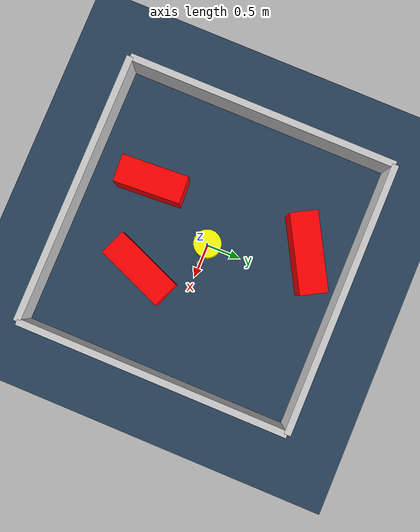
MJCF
<?xml version="1.0" ?>
<mujoco model="generated_environment">
  <option timestep="0.01" integrator="RK4" cone="elliptic"/>
  <default>
    <geom density="1"/>
  </default>
  <asset>
    <texture builtin="gradient" height="3072" rgb1="0.3 0.5 0.7" rgb2="0 0 0" type="skybox" width="512"/>
    <texture builtin="checker" height="300" mark="edge" markrgb="0.8 0.8 0.8" name="groundplane" rgb1="0.2 0.3 0.4" rgb2="0.1 0.2 0.3" type="2d" width="300"/>
    <material name="groundplane" reflectance="0.2" texrepeat="5 5" texture="groundplane" texuniform="true"/>
    <material name="robot" rgba="0.0 1.0 0.0 1"/>
  </asset>
  <worldbody>
    <light dir="0 0 -1" directional="true" pos="0 0 1.5"/>
    <geom condim="4" friction="1.0 0.005 0.001" material="groundplane" name="floor" size="0 0 0.05" type="plane"/>
    <body name="walls">
      <geom name="wall_1" condim="4" pos="-2.0 0.0 0.3" rgba="0.800000011920929 0.800000011920929 0.800000011920929 1.0" size="0.05 2.0 0.3" type="box"/>
      <geom name="wall_2" condim="4" pos="2.0 0.0 0.3" rgba="0.800000011920929 0.800000011920929 0.800000011920929 1.0" size="0.05 2.0 0.3" type="box"/>
      <geom name="wall_3" condim="4" pos="0.0 -2.0 0.3" rgba="0.800000011920929 0.800000011920929 0.800000011920929 1.0" size="2.0 0.05 0.3" type="box"/>
      <geom name="wall_4" condim="4" pos="0.0 2.0 0.3" rgba="0.800000011920929 0.800000011920929 0.800000011920929 1.0" size="2.0 0.05 0.3" type="box"/>
    </body>
    <body name="robot">
      <joint name="joint_x" type="slide" pos="0 0 0" axis="1 0 0"/>
      <joint name="joint_y" type="slide" pos="0 0 0" axis="0 1 0"/>
      <geom name="robot" type="sphere" pos="0.3 0.0 0.2" size="0.05" mass="5." friction="1.0 0.005 0.0001" condim="4" rgba="0.5 0.5 0.5 1.0"/>
      <site name="sensor_ball"/>
    </body>
    <body name="obstacle_movable_1">
      <geom name="obstacle_movable_1" condim="4" pos="0.0 0.0 0.2" euler="0 0 0.0" friction="1.0 0.005 0.001" rgba="1.0 1.0 0.0 1.0" size="0.2 0.2 0.0" type="cylinder" mass="0.1"/>
      <joint type="free"/>
    </body>
    <body name="obstacle_2_static">
      <geom name="obstacle_2_static" condim="4" pos="-0.5187436424932108 -1.0646127821516214 0.3" euler="0 0 93.2165024496568" friction="1.0 0.005 0.001" rgba="1 0 0 1" size="0.4877668214949179 0.2 0.3" type="box"/>
    </body>
    <body name="obstacle_3_static">
      <geom name="obstacle_3_static" condim="4" pos="0.6908108016154404 -0.7314330146131425 0.3" euler="0 0 247.75310115172005" friction="1.0 0.005 0.001" rgba="1 0 0 1" size="0.5204951905454525 0.2 0.3" type="box"/>
    </body>
    <body name="obstacle_4_static">
      <geom name="obstacle_4_static" condim="4" pos="-0.40937957584139695 1.3441415322877022 0.3" euler="0 0 29.05943061721593" friction="1.0 0.005 0.001" rgba="1 0 0 1" size="0.5761263205168523 0.2 0.3" type="box"/>
    </body>
  </worldbody>
  <actuator>
    <motor name="actuator_x" joint="joint_x" gear="1" ctrlrange="-1 1"/>
    <motor name="actuator_y" joint="joint_y" gear="1" ctrlrange="-1 1"/>
  </actuator>
</mujoco>
